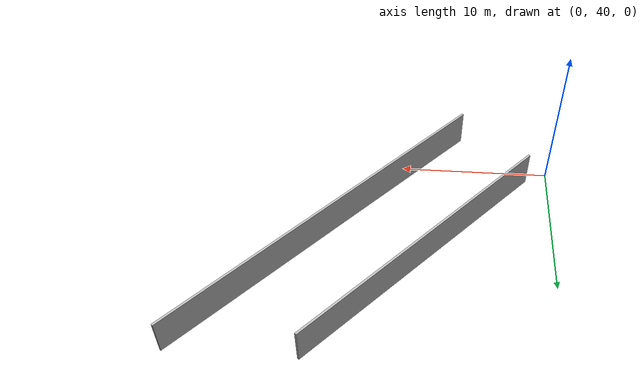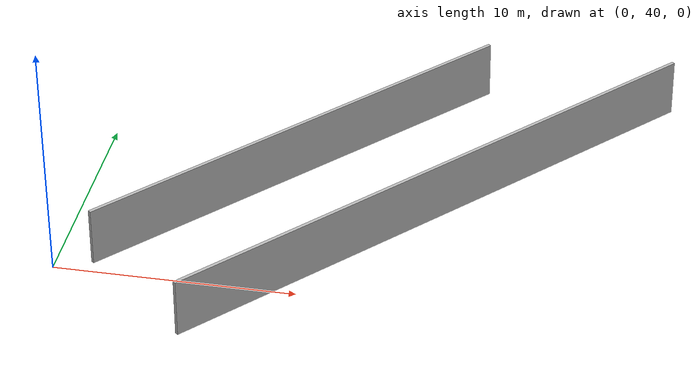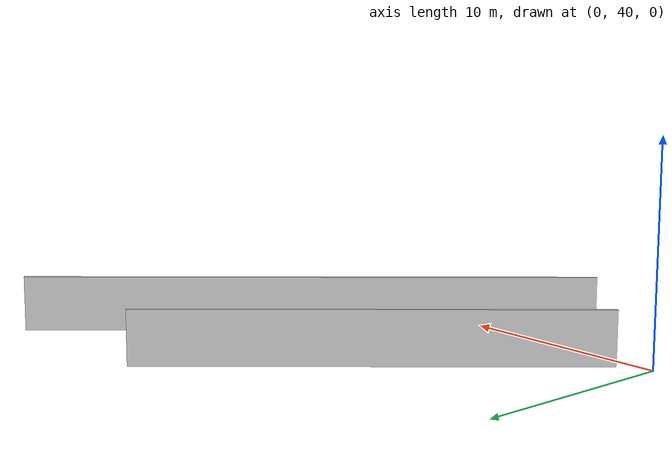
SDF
<?xml version="1.0" ?>
<sdf version="1.6">
  <model name="sps_1749">
    <pose frame="">0 0 0 0 -0 0</pose>
    <static>1</static>
    <self_collide>0</self_collide>
    <allow_auto_disable>0</allow_auto_disable>
    <link name="Wall51">
      <kinematic>0</kinematic>
      <gravity>1</gravity>
      <self_collide>0</self_collide>
      <collision name="collision">
        <geometry>
          <box>
            <size>20.7643 0.15 2.5</size>
          </box>
        </geometry>
        <pose frame="">0 0 0 0 -0 0</pose>
      </collision>
      <visual name="visual">
        <geometry>
          <box>
            <size>20.7643 0.15 2.5</size>
          </box>
        </geometry>
        <pose frame="">0 0 0 0 -0 0</pose>
        <cast_shadows>1</cast_shadows>
        <transparency>0.0</transparency>
      </visual>
      <pose frame="">8.38264 48.386 1.25 0 -0 0.843085</pose>
    </link>
    <link name="Wall628">
      <kinematic>0</kinematic>
      <gravity>1</gravity>
      <self_collide>0</self_collide>
      <collision name="collision">
        <geometry>
          <box>
            <size>26.109 0.15 2.5</size>
          </box>
        </geometry>
        <pose frame="">0 0 0 0 -0 0</pose>
      </collision>
      <visual name="visual">
        <geometry>
          <box>
            <size>26.109 0.15 2.5</size>
          </box>
        </geometry>
        <pose frame="">0 0 0 0 -0 0</pose>
        <cast_shadows>1</cast_shadows>
        <transparency>0.0</transparency>
      </visual>
      <pose frame="">14.6402 46.3905 1.25 0 0 -2.2985</pose>
    </link>
  </model>
</sdf>
